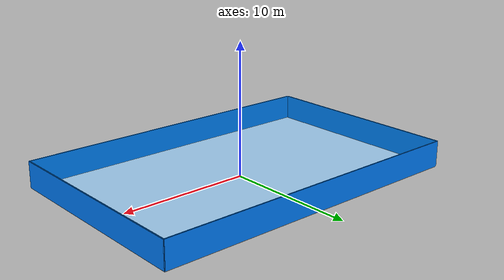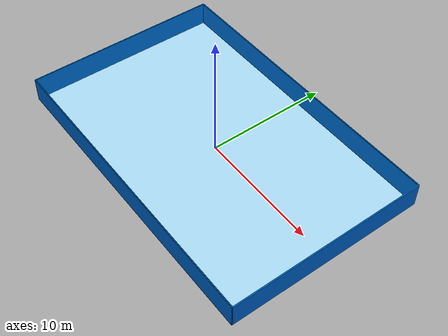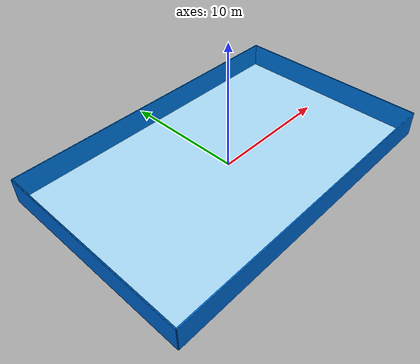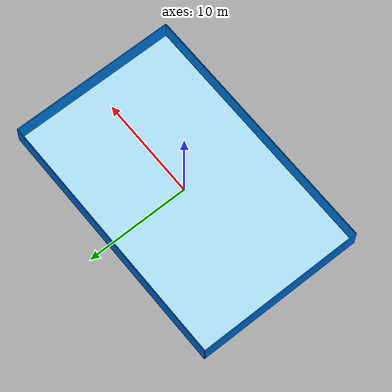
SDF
<sdf version="1.6">
 <world name="sauvc_pool_world">
  <physics name="1ms" type="ignored">
   <max_step_size>0.001</max_step_size>
   <real_time_factor>1.0</real_time_factor>
  </physics>
  <gravity>0 0 -9.8</gravity>
  <plugin filename="libignition-gazebo-physics-system.so" name="ignition::gazebo::systems::Physics"/>
  <plugin filename="libignition-gazebo-user-commands-system.so" name="ignition::gazebo::systems::UserCommands"/>
  <plugin filename="libignition-gazebo-scene-broadcaster-system.so" name="ignition::gazebo::systems::SceneBroadcaster"/>
  <plugin filename="libignition-gazebo-sensors-system.so" name="ignition::gazebo::systems::Sensors">
   <render_engine>ogre2</render_engine>
  </plugin>
  <plugin filename="libignition-gazebo-imu-system.so" name="ignition::gazebo::systems::Imu"/>
  <plugin filename="libignition-gazebo-buoyancy-system.so" name="ignition::gazebo::systems::Buoyancy">
   <graded_buoyancy>
    <default_density>1000</default_density>
    <density_change><above_depth>2.0</above_depth><density>1</density></density_change>
   </graded_buoyancy>
  </plugin>
  <light type="directional" name="sun">
   <pose>0 0 10 0 0 0</pose>
   <diffuse>0.8 0.8 0.8 1</diffuse>
   <specular>0.2 0.2 0.2 1</specular>
   <attenuation>
    <range>1000</range>
    <constant>0.9</constant>
    <linear>0.01</linear>
    <quadratic>0.001</quadratic>
   </attenuation>
   <direction>-0.5 0.1 -0.9</direction>
  </light>
  <scene>
   <ambient>0.4 0.6 0.8 1</ambient>
   <background>0.1 0.3 0.6 1</background>
   <sky><clouds><speed>12</speed></clouds></sky>
  </scene>
  <model name="pool_structure">
   <static>true</static>
   <link name="floor">
    <visual name="visual">
     <geometry><box><size>25 16 0.1</size></box></geometry>
     <material><ambient>0.8 0.9 1.0 1</ambient><diffuse>0.8 0.9 1.0 1</diffuse></material>
    </visual>
    <collision name="collision"><geometry><box><size>25 16 0.1</size></box></geometry></collision>
   </link>
   <link name="wall_n">
    <pose>0 8 1 0 0 0</pose>
    <visual name="visual">
     <geometry><box><size>25 0.1 2</size></box></geometry>
     <material><ambient>0 0.5 1 1</ambient><diffuse>0 0.5 1 1</diffuse></material>
    </visual>
    <collision name="collision"><geometry><box><size>25 0.1 2</size></box></geometry></collision>
   </link>
   <link name="wall_s">
    <pose>0 -8 1 0 0 0</pose>
    <visual name="visual">
     <geometry><box><size>25 0.1 2</size></box></geometry>
     <material><ambient>0 0.5 1 1</ambient><diffuse>0 0.5 1 1</diffuse></material>
    </visual>
    <collision name="collision"><geometry><box><size>25 0.1 2</size></box></geometry></collision>
   </link>
   <link name="wall_e">
    <pose>12.5 0 1 0 0 0</pose>
    <visual name="visual">
     <geometry><box><size>0.1 16 2</size></box></geometry>
     <material><ambient>0 0.5 1 1</ambient><diffuse>0 0.5 1 1</diffuse></material>
    </visual>
    <collision name="collision"><geometry><box><size>0.1 16 2</size></box></geometry></collision>
   </link>
   <link name="wall_w">
    <pose>-12.5 0 1 0 0 0</pose>
    <visual name="visual">
     <geometry><box><size>0.1 16 2</size></box></geometry>
     <material><ambient>0 0.5 1 1</ambient><diffuse>0 0.5 1 1</diffuse></material>
    </visual>
    <collision name="collision"><geometry><box><size>0.1 16 2</size></box></geometry></collision>
   </link>
  </model>
  <model name="water_surface">
   <static>true</static>
   <link name="link">
    <pose>0 0 2.0 0 0 0</pose>
    <visual name="visual">
     <geometry><box><size>25 16 0.01</size></box></geometry>
     <material><ambient>0.0 0.5 0.8 0.2</ambient><diffuse>0.0 0.5 0.8 0.2</diffuse></material>
    </visual>
   </link>
  </model>
 </world>
</sdf>
